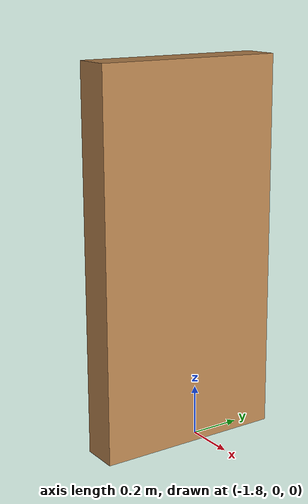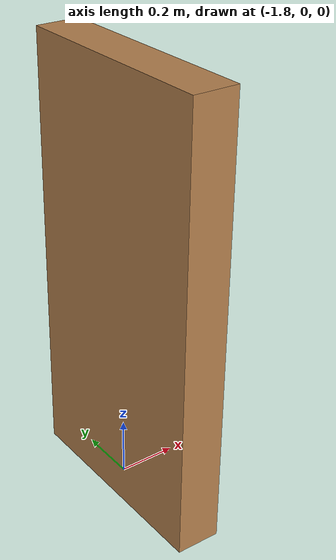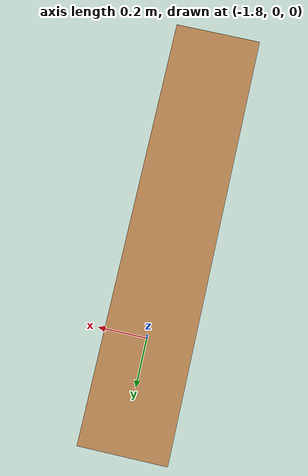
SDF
<?xml version='1.0'?>
<sdf version='1.6'>
  <model name='H'>
    <pose frame=''>-1.816 -0.061 0 0 -0 0</pose>
    <link name='Wall_52'>
      <collision name='Wall_52_Collision'>
        <geometry>
          <box>
            <size>0.75 0.15 1.5</size>
          </box>
        </geometry>
        <pose frame=''>0 0 0.75 0 -0 0</pose>
      </collision>
      <visual name='Wall_52_Visual'>
        <pose frame=''>0 0 0.75 0 -0 0</pose>
        <geometry>
          <box>
            <size>0.75 0.15 1.5</size>
          </box>
        </geometry>
        <material>
          <script>
            <uri>file://media/materials/scripts/gazebo.material</uri>
            <name>Gazebo/Wood</name>
          </script>
          <ambient>1 1 1 1</ambient>
        </material>
        <meta>
          <layer>0</layer>
        </meta>
      </visual>
      <pose frame=''>0 -0 0 0 -0 -1.5708</pose>
    </link>
    <static>1</static>
  </model>
</sdf>
